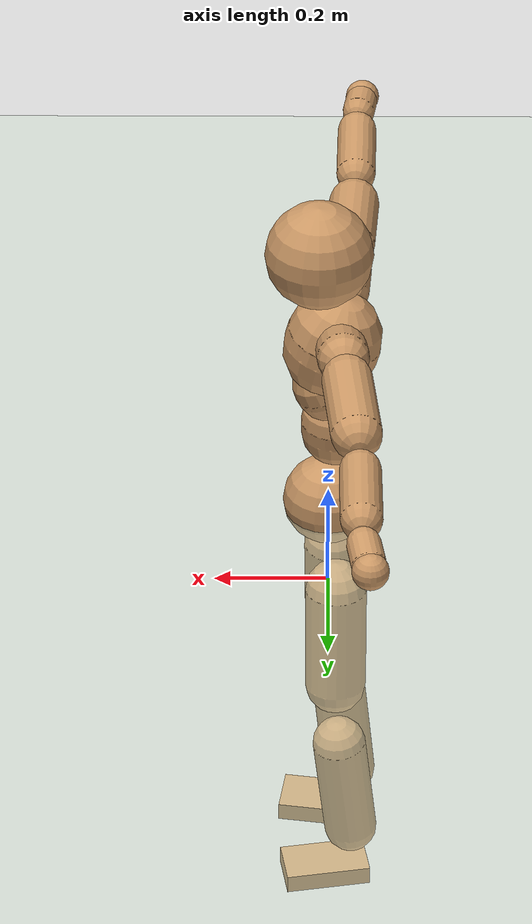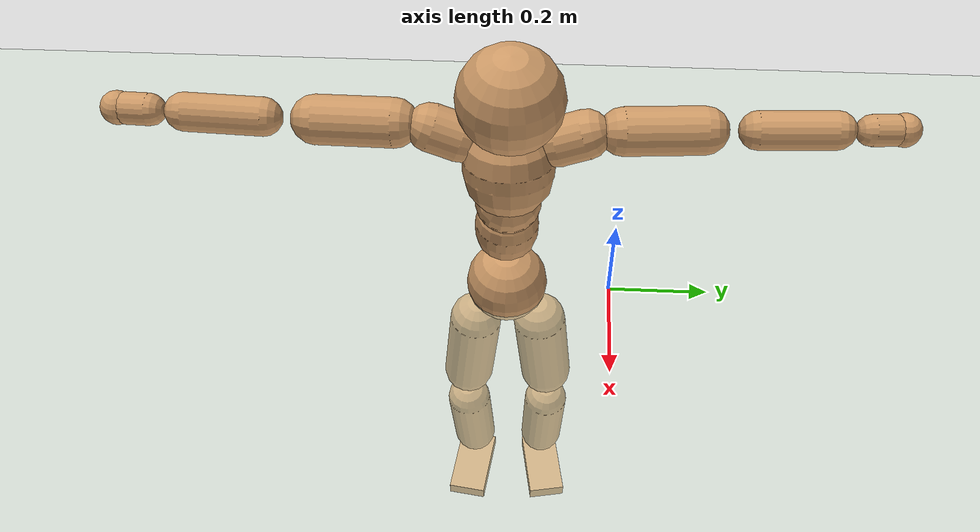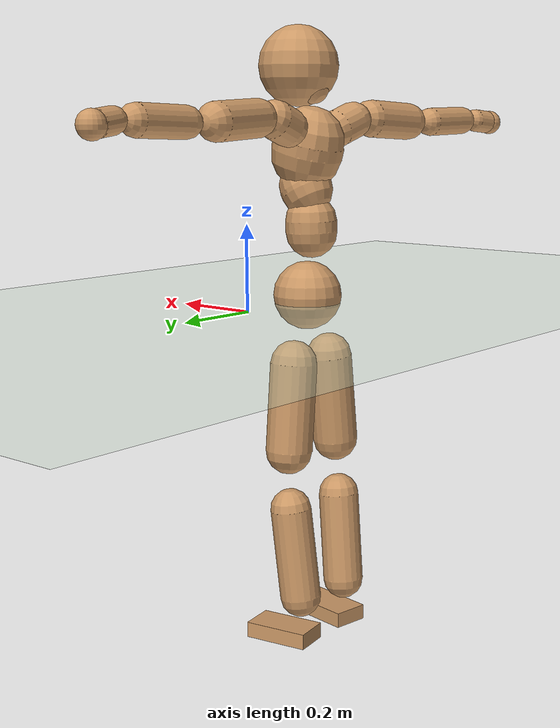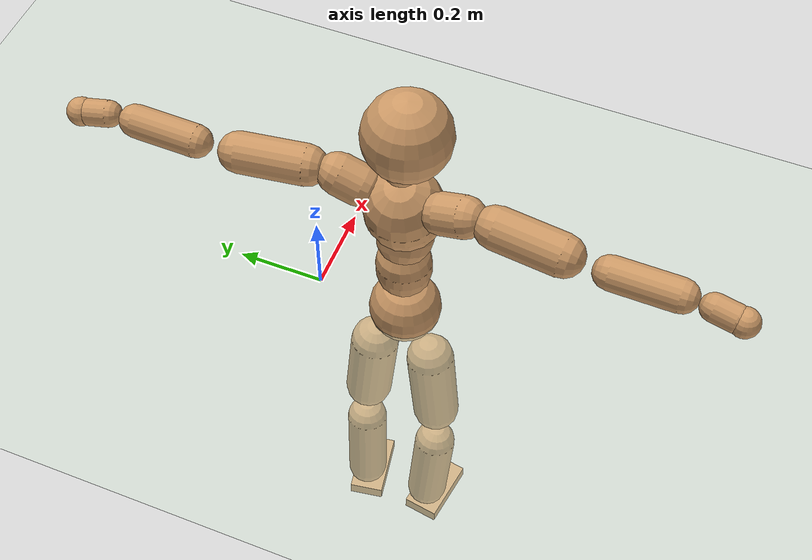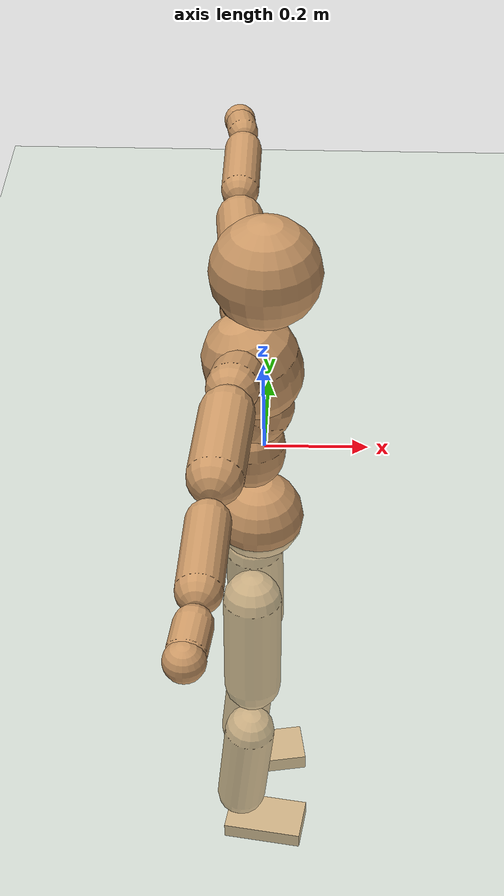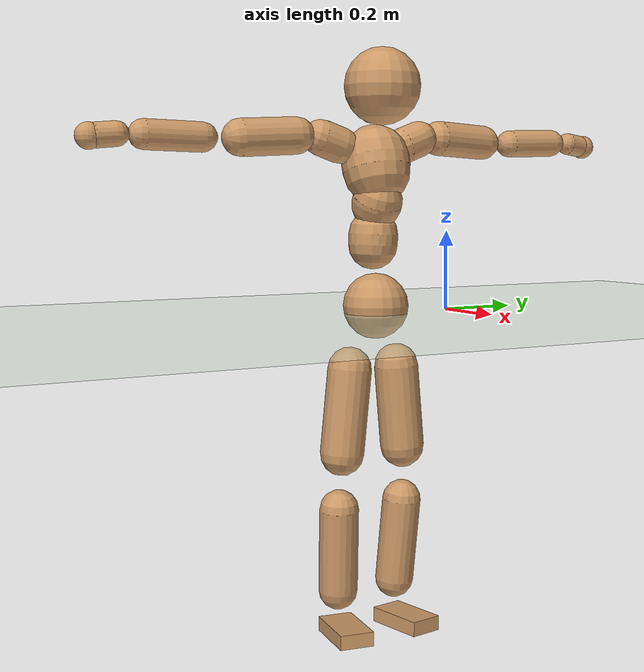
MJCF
<mujoco model="humanoid">
  <compiler coordinate="local"/>
  <default>
    <joint damping="0.0" armature="0.01" stiffness="0.0" limited="true"/>
    <geom conaffinity="1" condim="3" contype="7" margin="0.001" rgba="0.8 0.6 .4 1"/>
  </default>
  <asset>
    <texture type="skybox" builtin="gradient" rgb1=".4 .5 .6" rgb2="0 0 0" width="100" height="100"/>
    <texture builtin="flat" height="1278" mark="cross" markrgb="1 1 1" name="texgeom" random="0.01" rgb1="0.8 0.6 0.4" rgb2="0.8 0.6 0.4" type="cube" width="127"/>
    <texture builtin="checker" height="100" name="texplane" rgb1="0 0 0" rgb2="0.8 0.8 0.8" type="2d" width="100"/>
    <material name="MatPlane" reflectance="0.5" shininess="1" specular="1" texrepeat="60 60" texture="texplane"/>
    <material name="geom" texture="texgeom" texuniform="true"/>
  </asset>
  <worldbody>
    <light cutoff="100" diffuse="1 1 1" dir="-0 0 -1.3" directional="true" exponent="1" pos="0 0 1.3" specular=".1 .1 .1"/>
    <geom conaffinity="1" condim="3" name="floor" pos="0 0 0" rgba="0.8 0.9 0.8 1" size="100 100 .2" type="plane" material="MatPlane"/>
    <body name="Pelvis" pos="-0.0018 -0.2095 0.0164">
      <freejoint name="Pelvis"/>
      <geom type="sphere" contype="1" conaffinity="1" density="500" size="0.0821" pos="0.0000 0.0000 0.0000" name="Pelvis"/>
      <body name="L_Hip" pos="-0.0146 0.0632 -0.0859">
        <joint name="L_Hip_x" type="hinge" pos="0 0 0" axis="1 0 0" stiffness="800" damping="80" armature="0.02" range="-180.0000 180.0000"/>
        <joint name="L_Hip_y" type="hinge" pos="0 0 0" axis="0 1 0" stiffness="800" damping="80" armature="0.02" range="-180.0000 180.0000"/>
        <joint name="L_Hip_z" type="hinge" pos="0 0 0" axis="0 0 1" stiffness="800" damping="80" armature="0.02" range="-180.0000 180.0000"/>
        <geom type="capsule" contype="1" conaffinity="1" density="500" fromto="-0.0001 0.0063 -0.0700 -0.0004 0.0252 -0.2799" size="0.0558" name="L_Hip"/>
        <body name="L_Knee" pos="-0.0005 0.0315 -0.3499">
          <joint name="L_Knee_x" type="hinge" pos="0 0 0" axis="1 0 0" stiffness="800" damping="80" armature="0.02" range="-180.0000 180.0000"/>
          <joint name="L_Knee_y" type="hinge" pos="0 0 0" axis="0 1 0" stiffness="800" damping="80" armature="0.02" range="-180.0000 180.0000"/>
          <joint name="L_Knee_z" type="hinge" pos="0 0 0" axis="0 0 1" stiffness="800" damping="80" armature="0.02" range="-180.0000 180.0000"/>
          <geom type="capsule" contype="1" conaffinity="1" density="500" fromto="-0.0078 -0.0024 -0.0727 -0.0311 -0.0096 -0.2906" size="0.0494" name="L_Knee"/>
          <body name="L_Ankle" pos="-0.0389 -0.012 -0.3633">
            <joint name="L_Ankle_x" type="hinge" pos="0 0 0" axis="1 0 0" stiffness="800" damping="80" armature="0.02" range="-180.0000 180.0000"/>
            <joint name="L_Ankle_y" type="hinge" pos="0 0 0" axis="0 1 0" stiffness="800" damping="80" armature="0.02" range="-180.0000 180.0000"/>
            <joint name="L_Ankle_z" type="hinge" pos="0 0 0" axis="0 0 1" stiffness="800" damping="80" armature="0.02" range="-180.0000 180.0000"/>
            <geom type="box" contype="1" conaffinity="1" density="500" pos="0.0556 0.0094 -0.0256" size="0.0797 0.0427 0.0188" quat="0.9965 0.0000 0.0000 0.0837" name="L_Ankle"/>
            <body name="L_Toe" pos="0.1113 0.0188 -0.0511">
              <joint name="L_Toe_x" type="hinge" pos="0 0 0" axis="1 0 0" stiffness="500" damping="50" armature="0.02" range="-180.0000 180.0000"/>
              <joint name="L_Toe_y" type="hinge" pos="0 0 0" axis="0 1 0" stiffness="500" damping="50" armature="0.02" range="-180.0000 180.0000"/>
              <joint name="L_Toe_z" type="hinge" pos="0 0 0" axis="0 0 1" stiffness="500" damping="50" armature="0.02" range="-180.0000 180.0000"/>
              <geom type="box" contype="1" conaffinity="1" density="500" pos="0.0000 0.0000 0.0253" size="0.0009 0.0021 0.0009" quat="0.9959 0.0000 0.0000 0.0908" name="L_Toe"/>
            </body>
          </body>
        </body>
      </body>
      <body name="R_Hip" pos="-0.0113 -0.0609 -0.0847">
        <joint name="R_Hip_x" type="hinge" pos="0 0 0" axis="1 0 0" stiffness="800" damping="80" armature="0.02" range="-180.0000 180.0000"/>
        <joint name="R_Hip_y" type="hinge" pos="0 0 0" axis="0 1 0" stiffness="800" damping="80" armature="0.02" range="-180.0000 180.0000"/>
        <joint name="R_Hip_z" type="hinge" pos="0 0 0" axis="0 0 1" stiffness="800" damping="80" armature="0.02" range="-180.0000 180.0000"/>
        <geom type="capsule" contype="1" conaffinity="1" density="500" fromto="-0.0007 -0.0071 -0.0714 -0.0030 -0.0283 -0.2856" size="0.0551" name="R_Hip"/>
        <body name="R_Knee" pos="-0.0037 -0.0354 -0.357">
          <joint name="R_Knee_x" type="hinge" pos="0 0 0" axis="1 0 0" stiffness="800" damping="80" armature="0.02" range="-180.0000 180.0000"/>
          <joint name="R_Knee_y" type="hinge" pos="0 0 0" axis="0 1 0" stiffness="800" damping="80" armature="0.02" range="-180.0000 180.0000"/>
          <joint name="R_Knee_z" type="hinge" pos="0 0 0" axis="0 0 1" stiffness="800" damping="80" armature="0.02" range="-180.0000 180.0000"/>
          <geom type="capsule" contype="1" conaffinity="1" density="500" fromto="-0.0074 0.0029 -0.0724 -0.0296 0.0117 -0.2897" size="0.0498" name="R_Knee"/>
          <body name="R_Ankle" pos="-0.037 0.0147 -0.3622">
            <joint name="R_Ankle_x" type="hinge" pos="0 0 0" axis="1 0 0" stiffness="800" damping="80" armature="0.02" range="-180.0000 180.0000"/>
            <joint name="R_Ankle_y" type="hinge" pos="0 0 0" axis="0 1 0" stiffness="800" damping="80" armature="0.02" range="-180.0000 180.0000"/>
            <joint name="R_Ankle_z" type="hinge" pos="0 0 0" axis="0 0 1" stiffness="800" damping="80" armature="0.02" range="-180.0000 180.0000"/>
            <geom type="box" contype="1" conaffinity="1" density="500" pos="0.0571 -0.0084 -0.0215" size="0.0805 0.0442 0.0183" quat="0.9973 0.0000 0.0000 -0.0734" name="R_Ankle"/>
            <body name="R_Toe" pos="0.1142 -0.0169 -0.0431">
              <joint name="R_Toe_x" type="hinge" pos="0 0 0" axis="1 0 0" stiffness="500" damping="50" armature="0.02" range="-180.0000 180.0000"/>
              <joint name="R_Toe_y" type="hinge" pos="0 0 0" axis="0 1 0" stiffness="500" damping="50" armature="0.02" range="-180.0000 180.0000"/>
              <joint name="R_Toe_z" type="hinge" pos="0 0 0" axis="0 0 1" stiffness="500" damping="50" armature="0.02" range="-180.0000 180.0000"/>
              <geom type="box" contype="1" conaffinity="1" density="500" pos="0.0000 0.0000 0.0237" size="0.0008 0.0022 0.001" quat="0.9980 0.0000 0.0000 -0.0637" name="R_Toe"/>
            </body>
          </body>
        </body>
      </body>
      <body name="Torso" pos="-0.0129 -0.0027 0.0984">
        <joint name="Torso_x" type="hinge" pos="0 0 0" axis="1 0 0" stiffness="1000" damping="100" armature="0.02" range="-180.0000 180.0000"/>
        <joint name="Torso_y" type="hinge" pos="0 0 0" axis="0 1 0" stiffness="1000" damping="100" armature="0.02" range="-180.0000 180.0000"/>
        <joint name="Torso_z" type="hinge" pos="0 0 0" axis="0 0 1" stiffness="1000" damping="100" armature="0.02" range="-180.0000 180.0000"/>
        <geom type="capsule" contype="1" conaffinity="1" density="500" fromto="0.0012 0.0025 0.0805 0.0008 0.0017 0.0537" size="0.0614" name="Torso"/>
        <body name="Spine" pos="0.002 0.0042 0.1342">
          <joint name="Spine_x" type="hinge" pos="0 0 0" axis="1 0 0" stiffness="1000" damping="100" armature="0.02" range="-180.0000 180.0000"/>
          <joint name="Spine_y" type="hinge" pos="0 0 0" axis="0 1 0" stiffness="1000" damping="100" armature="0.02" range="-180.0000 180.0000"/>
          <joint name="Spine_z" type="hinge" pos="0 0 0" axis="0 0 1" stiffness="1000" damping="100" armature="0.02" range="-180.0000 180.0000"/>
          <geom type="capsule" contype="1" conaffinity="1" density="500" fromto="0.0148 0.0015 0.0291 0.0098 0.0010 0.0194" size="0.0625" name="Spine"/>
          <body name="Chest" pos="0.0246 0.0026 0.0484">
            <joint name="Chest_x" type="hinge" pos="0 0 0" axis="1 0 0" stiffness="1000" damping="100" armature="0.02" range="-180.0000 180.0000"/>
            <joint name="Chest_y" type="hinge" pos="0 0 0" axis="0 1 0" stiffness="1000" damping="100" armature="0.02" range="-180.0000 180.0000"/>
            <joint name="Chest_z" type="hinge" pos="0 0 0" axis="0 0 1" stiffness="1000" damping="100" armature="0.02" range="-180.0000 180.0000"/>
            <geom type="capsule" contype="1" conaffinity="1" density="500" fromto="-0.0229 -0.0008 0.0827 -0.0153 -0.0005 0.0552" size="0.0846" name="Chest"/>
            <body name="Neck" pos="-0.0441 -0.0021 0.1957">
              <joint name="Neck_x" type="hinge" pos="0 0 0" axis="1 0 0" stiffness="500" damping="50" armature="0.02" range="-180.0000 180.0000"/>
              <joint name="Neck_y" type="hinge" pos="0 0 0" axis="0 1 0" stiffness="500" damping="50" armature="0.02" range="-180.0000 180.0000"/>
              <joint name="Neck_z" type="hinge" pos="0 0 0" axis="0 0 1" stiffness="500" damping="50" armature="0.02" range="-180.0000 180.0000"/>
              <geom type="capsule" contype="1" conaffinity="1" density="500" fromto="0.0099 0.0010 0.0125 0.0394 0.0041 0.0500" size="0.0385" name="Neck"/>
              <body name="Head" pos="0.0493 0.0052 0.0624">
                <joint name="Head_x" type="hinge" pos="0 0 0" axis="1 0 0" stiffness="500" damping="50" armature="0.02" range="-180.0000 180.0000"/>
                <joint name="Head_y" type="hinge" pos="0 0 0" axis="0 1 0" stiffness="500" damping="50" armature="0.02" range="-180.0000 180.0000"/>
                <joint name="Head_z" type="hinge" pos="0 0 0" axis="0 0 1" stiffness="500" damping="50" armature="0.02" range="-180.0000 180.0000"/>
                <geom type="sphere" contype="1" conaffinity="1" density="500" size="0.0946" pos="0.0000 0.0000 0.0000" name="Head"/>
              </body>
            </body>
            <body name="L_Thorax" pos="-0.033 0.0697 0.1103">
              <joint name="L_Thorax_x" type="hinge" pos="0 0 0" axis="1 0 0" stiffness="500" damping="50" armature="0.02" range="-180.0000 180.0000"/>
              <joint name="L_Thorax_y" type="hinge" pos="0 0 0" axis="0 1 0" stiffness="500" damping="50" armature="0.02" range="-180.0000 180.0000"/>
              <joint name="L_Thorax_z" type="hinge" pos="0 0 0" axis="0 0 1" stiffness="500" damping="50" armature="0.02" range="-180.0000 180.0000"/>
              <geom type="capsule" contype="1" conaffinity="1" density="500" fromto="-0.0009 0.0164 0.0060 -0.0036 0.0654 0.0240" size="0.0453" name="L_Thorax"/>
              <body name="L_Shoulder" pos="-0.0045 0.0818 0.03">
                <joint name="L_Shoulder_x" type="hinge" pos="0 0 0" axis="1 0 0" stiffness="500" damping="50" armature="0.02" range="-720.0000 720.0000"/>
                <joint name="L_Shoulder_y" type="hinge" pos="0 0 0" axis="0 1 0" stiffness="500" damping="50" armature="0.02" range="-720.0000 720.0000"/>
                <joint name="L_Shoulder_z" type="hinge" pos="0 0 0" axis="0 0 1" stiffness="500" damping="50" armature="0.02" range="-720.0000 720.0000"/>
                <geom type="capsule" contype="1" conaffinity="1" density="500" fromto="-0.0050 0.0486 -0.0024 -0.0200 0.1943 -0.0096" size="0.0439" name="L_Shoulder"/>
                <body name="L_Elbow" pos="-0.025 0.2429 -0.012">
                  <joint name="L_Elbow_x" type="hinge" pos="0 0 0" axis="1 0 0" stiffness="500" damping="50" armature="0.02" range="-720.0000 720.0000"/>
                  <joint name="L_Elbow_y" type="hinge" pos="0 0 0" axis="0 1 0" stiffness="500" damping="50" armature="0.02" range="-720.0000 720.0000"/>
                  <joint name="L_Elbow_z" type="hinge" pos="0 0 0" axis="0 0 1" stiffness="500" damping="50" armature="0.02" range="-720.0000 720.0000"/>
                  <geom type="capsule" contype="1" conaffinity="1" density="500" fromto="-0.0002 0.0460 0.0015 -0.0009 0.1841 0.0061" size="0.0354" name="L_Elbow"/>
                  <body name="L_Wrist" pos="-0.0012 0.2301 0.0076">
                    <joint name="L_Wrist_x" type="hinge" pos="0 0 0" axis="1 0 0" stiffness="300" damping="30" armature="0.02" range="-180.0000 180.0000"/>
                    <joint name="L_Wrist_y" type="hinge" pos="0 0 0" axis="0 1 0" stiffness="300" damping="30" armature="0.02" range="-180.0000 180.0000"/>
                    <joint name="L_Wrist_z" type="hinge" pos="0 0 0" axis="0 0 1" stiffness="300" damping="30" armature="0.02" range="-180.0000 180.0000"/>
                    <geom type="capsule" contype="1" conaffinity="1" density="500" fromto="-0.0026 0.0153 -0.0019 -0.0102 0.0613 -0.0075" size="0.0287" name="L_Wrist"/>
                    <body name="L_Hand" pos="-0.0128 0.0766 -0.0094">
                      <joint name="L_Hand_x" type="hinge" pos="0 0 0" axis="1 0 0" stiffness="300" damping="30" armature="0.02" range="-180.0000 180.0000"/>
                      <joint name="L_Hand_y" type="hinge" pos="0 0 0" axis="0 1 0" stiffness="300" damping="30" armature="0.02" range="-180.0000 180.0000"/>
                      <joint name="L_Hand_z" type="hinge" pos="0 0 0" axis="0 0 1" stiffness="300" damping="30" armature="0.02" range="-180.0000 180.0000"/>
                      <geom type="sphere" contype="1" conaffinity="1" density="500" size="0.0309" pos="0.0000 0.0000 0.0000" name="L_Hand"/>
                    </body>
                  </body>
                </body>
              </body>
            </body>
            <body name="R_Thorax" pos="-0.0376 -0.0715 0.1077">
              <joint name="R_Thorax_x" type="hinge" pos="0 0 0" axis="1 0 0" stiffness="500" damping="50" armature="0.02" range="-180.0000 180.0000"/>
              <joint name="R_Thorax_y" type="hinge" pos="0 0 0" axis="0 1 0" stiffness="500" damping="50" armature="0.02" range="-180.0000 180.0000"/>
              <joint name="R_Thorax_z" type="hinge" pos="0 0 0" axis="0 0 1" stiffness="500" damping="50" armature="0.02" range="-180.0000 180.0000"/>
              <geom type="capsule" contype="1" conaffinity="1" density="500" fromto="-0.0017 -0.0173 0.0062 -0.0068 -0.0692 0.0247" size="0.0444" name="R_Thorax"/>
              <body name="R_Shoulder" pos="-0.0085 -0.0865 0.0309">
                <joint name="R_Shoulder_x" type="hinge" pos="0 0 0" axis="1 0 0" stiffness="500" damping="50" armature="0.02" range="-720.0000 720.0000"/>
                <joint name="R_Shoulder_y" type="hinge" pos="0 0 0" axis="0 1 0" stiffness="500" damping="50" armature="0.02" range="-720.0000 720.0000"/>
                <joint name="R_Shoulder_z" type="hinge" pos="0 0 0" axis="0 0 1" stiffness="500" damping="50" armature="0.02" range="-720.0000 720.0000"/>
                <geom type="capsule" contype="1" conaffinity="1" density="500" fromto="-0.0032 -0.0474 -0.0024 -0.0129 -0.1898 -0.0098" size="0.0454" name="R_Shoulder"/>
                <body name="R_Elbow" pos="-0.0161 -0.2372 -0.0122">
                  <joint name="R_Elbow_x" type="hinge" pos="0 0 0" axis="1 0 0" stiffness="500" damping="50" armature="0.02" range="-720.0000 720.0000"/>
                  <joint name="R_Elbow_y" type="hinge" pos="0 0 0" axis="0 1 0" stiffness="500" damping="50" armature="0.02" range="-720.0000 720.0000"/>
                  <joint name="R_Elbow_z" type="hinge" pos="0 0 0" axis="0 0 1" stiffness="500" damping="50" armature="0.02" range="-720.0000 720.0000"/>
                  <geom type="capsule" contype="1" conaffinity="1" density="500" fromto="-0.0011 -0.0475 0.0011 -0.0045 -0.1900 0.0045" size="0.0355" name="R_Elbow"/>
                  <body name="R_Wrist" pos="-0.0057 -0.2375 0.0057">
                    <joint name="R_Wrist_x" type="hinge" pos="0 0 0" axis="1 0 0" stiffness="300" damping="30" armature="0.02" range="-180.0000 180.0000"/>
                    <joint name="R_Wrist_y" type="hinge" pos="0 0 0" axis="0 1 0" stiffness="300" damping="30" armature="0.02" range="-180.0000 180.0000"/>
                    <joint name="R_Wrist_z" type="hinge" pos="0 0 0" axis="0 0 1" stiffness="300" damping="30" armature="0.02" range="-180.0000 180.0000"/>
                    <geom type="capsule" contype="1" conaffinity="1" density="500" fromto="-0.0020 -0.0155 -0.0014 -0.0079 -0.0620 -0.0056" size="0.0295" name="R_Wrist"/>
                    <body name="R_Hand" pos="-0.0099 -0.0774 -0.007">
                      <joint name="R_Hand_x" type="hinge" pos="0 0 0" axis="1 0 0" stiffness="300" damping="30" armature="0.02" range="-180.0000 180.0000"/>
                      <joint name="R_Hand_y" type="hinge" pos="0 0 0" axis="0 1 0" stiffness="300" damping="30" armature="0.02" range="-180.0000 180.0000"/>
                      <joint name="R_Hand_z" type="hinge" pos="0 0 0" axis="0 0 1" stiffness="300" damping="30" armature="0.02" range="-180.0000 180.0000"/>
                      <geom type="sphere" contype="1" conaffinity="1" density="500" size="0.0311" pos="0.0000 0.0000 0.0000" name="R_Hand"/>
                    </body>
                  </body>
                </body>
              </body>
            </body>
          </body>
        </body>
      </body>
    </body>
  </worldbody>
  <actuator>
    <motor name="L_Hip_x" joint="L_Hip_x" gear="500"/>
    <motor name="L_Hip_y" joint="L_Hip_y" gear="500"/>
    <motor name="L_Hip_z" joint="L_Hip_z" gear="500"/>
    <motor name="L_Knee_x" joint="L_Knee_x" gear="500"/>
    <motor name="L_Knee_y" joint="L_Knee_y" gear="500"/>
    <motor name="L_Knee_z" joint="L_Knee_z" gear="500"/>
    <motor name="L_Ankle_x" joint="L_Ankle_x" gear="500"/>
    <motor name="L_Ankle_y" joint="L_Ankle_y" gear="500"/>
    <motor name="L_Ankle_z" joint="L_Ankle_z" gear="500"/>
    <motor name="L_Toe_x" joint="L_Toe_x" gear="500"/>
    <motor name="L_Toe_y" joint="L_Toe_y" gear="500"/>
    <motor name="L_Toe_z" joint="L_Toe_z" gear="500"/>
    <motor name="R_Hip_x" joint="R_Hip_x" gear="500"/>
    <motor name="R_Hip_y" joint="R_Hip_y" gear="500"/>
    <motor name="R_Hip_z" joint="R_Hip_z" gear="500"/>
    <motor name="R_Knee_x" joint="R_Knee_x" gear="500"/>
    <motor name="R_Knee_y" joint="R_Knee_y" gear="500"/>
    <motor name="R_Knee_z" joint="R_Knee_z" gear="500"/>
    <motor name="R_Ankle_x" joint="R_Ankle_x" gear="500"/>
    <motor name="R_Ankle_y" joint="R_Ankle_y" gear="500"/>
    <motor name="R_Ankle_z" joint="R_Ankle_z" gear="500"/>
    <motor name="R_Toe_x" joint="R_Toe_x" gear="500"/>
    <motor name="R_Toe_y" joint="R_Toe_y" gear="500"/>
    <motor name="R_Toe_z" joint="R_Toe_z" gear="500"/>
    <motor name="Torso_x" joint="Torso_x" gear="500"/>
    <motor name="Torso_y" joint="Torso_y" gear="500"/>
    <motor name="Torso_z" joint="Torso_z" gear="500"/>
    <motor name="Spine_x" joint="Spine_x" gear="500"/>
    <motor name="Spine_y" joint="Spine_y" gear="500"/>
    <motor name="Spine_z" joint="Spine_z" gear="500"/>
    <motor name="Chest_x" joint="Chest_x" gear="500"/>
    <motor name="Chest_y" joint="Chest_y" gear="500"/>
    <motor name="Chest_z" joint="Chest_z" gear="500"/>
    <motor name="Neck_x" joint="Neck_x" gear="500"/>
    <motor name="Neck_y" joint="Neck_y" gear="500"/>
    <motor name="Neck_z" joint="Neck_z" gear="500"/>
    <motor name="Head_x" joint="Head_x" gear="500"/>
    <motor name="Head_y" joint="Head_y" gear="500"/>
    <motor name="Head_z" joint="Head_z" gear="500"/>
    <motor name="L_Thorax_x" joint="L_Thorax_x" gear="500"/>
    <motor name="L_Thorax_y" joint="L_Thorax_y" gear="500"/>
    <motor name="L_Thorax_z" joint="L_Thorax_z" gear="500"/>
    <motor name="L_Shoulder_x" joint="L_Shoulder_x" gear="500"/>
    <motor name="L_Shoulder_y" joint="L_Shoulder_y" gear="500"/>
    <motor name="L_Shoulder_z" joint="L_Shoulder_z" gear="500"/>
    <motor name="L_Elbow_x" joint="L_Elbow_x" gear="500"/>
    <motor name="L_Elbow_y" joint="L_Elbow_y" gear="500"/>
    <motor name="L_Elbow_z" joint="L_Elbow_z" gear="500"/>
    <motor name="L_Wrist_x" joint="L_Wrist_x" gear="500"/>
    <motor name="L_Wrist_y" joint="L_Wrist_y" gear="500"/>
    <motor name="L_Wrist_z" joint="L_Wrist_z" gear="500"/>
    <motor name="L_Hand_x" joint="L_Hand_x" gear="500"/>
    <motor name="L_Hand_y" joint="L_Hand_y" gear="500"/>
    <motor name="L_Hand_z" joint="L_Hand_z" gear="500"/>
    <motor name="R_Thorax_x" joint="R_Thorax_x" gear="500"/>
    <motor name="R_Thorax_y" joint="R_Thorax_y" gear="500"/>
    <motor name="R_Thorax_z" joint="R_Thorax_z" gear="500"/>
    <motor name="R_Shoulder_x" joint="R_Shoulder_x" gear="500"/>
    <motor name="R_Shoulder_y" joint="R_Shoulder_y" gear="500"/>
    <motor name="R_Shoulder_z" joint="R_Shoulder_z" gear="500"/>
    <motor name="R_Elbow_x" joint="R_Elbow_x" gear="500"/>
    <motor name="R_Elbow_y" joint="R_Elbow_y" gear="500"/>
    <motor name="R_Elbow_z" joint="R_Elbow_z" gear="500"/>
    <motor name="R_Wrist_x" joint="R_Wrist_x" gear="500"/>
    <motor name="R_Wrist_y" joint="R_Wrist_y" gear="500"/>
    <motor name="R_Wrist_z" joint="R_Wrist_z" gear="500"/>
    <motor name="R_Hand_x" joint="R_Hand_x" gear="500"/>
    <motor name="R_Hand_y" joint="R_Hand_y" gear="500"/>
    <motor name="R_Hand_z" joint="R_Hand_z" gear="500"/>
  </actuator>
  <contact>
    <exclude body1="Torso" body2="Chest"/>
    <exclude body1="Head" body2="Chest"/>
    <exclude body1="R_Knee" body2="R_Toe"/>
    <exclude body1="R_Knee" body2="L_Ankle"/>
    <exclude body1="R_Knee" body2="L_Toe"/>
    <exclude body1="L_Knee" body2="L_Toe"/>
    <exclude body1="L_Knee" body2="R_Ankle"/>
    <exclude body1="L_Knee" body2="R_Toe"/>
    <exclude body1="L_Shoulder" body2="Chest"/>
    <exclude body1="R_Shoulder" body2="Chest"/>
  </contact>
  <sensor/>
  <size njmax="700" nconmax="700"/>
</mujoco>
